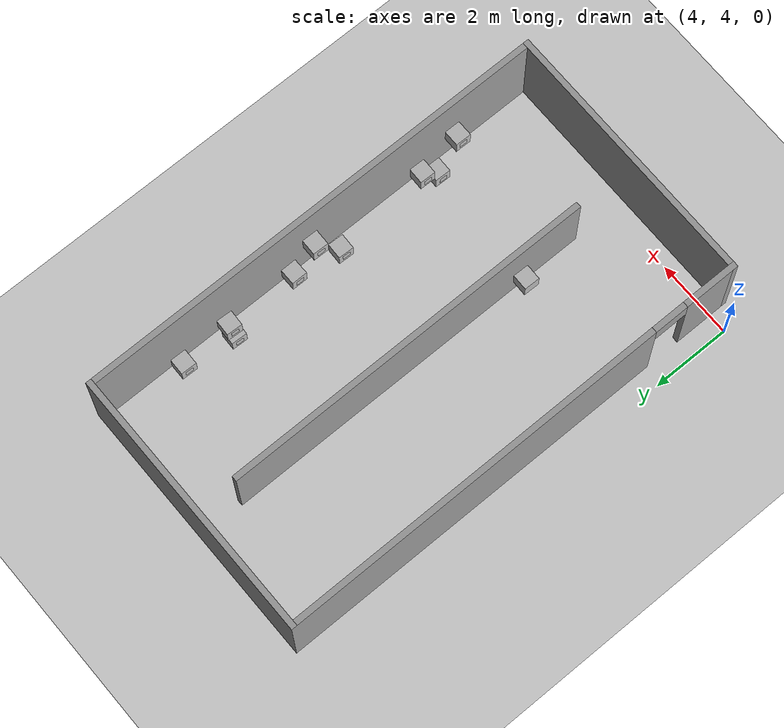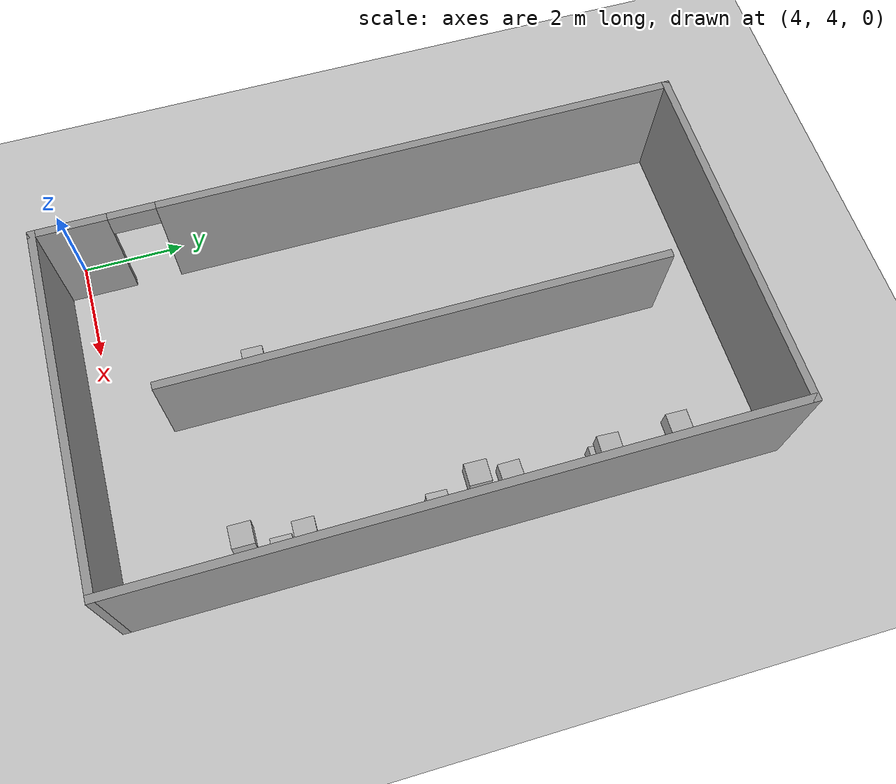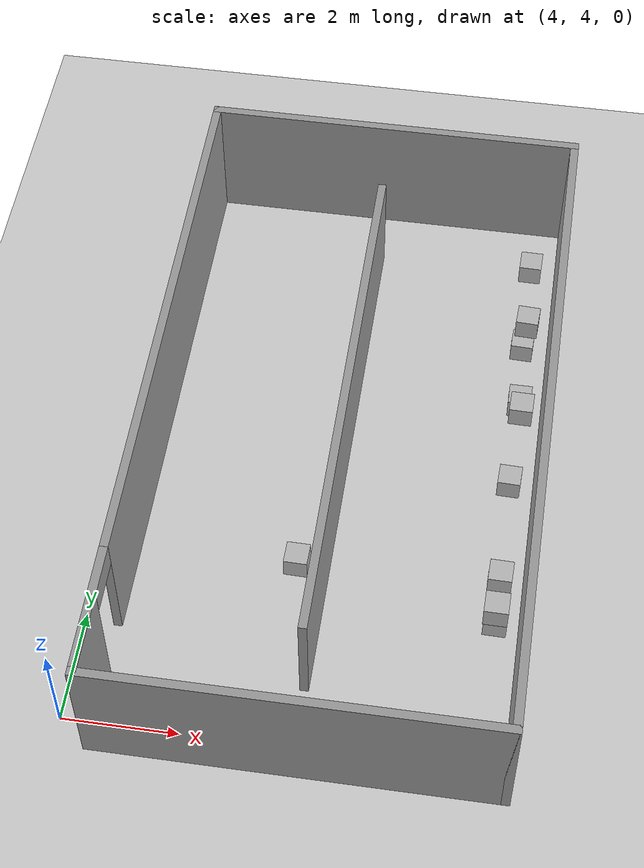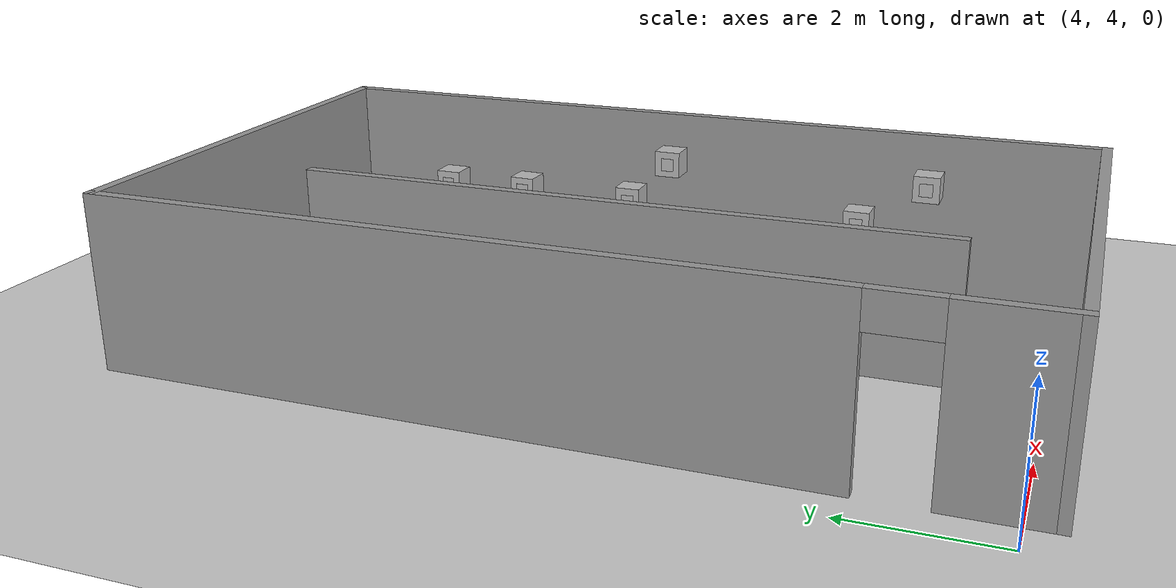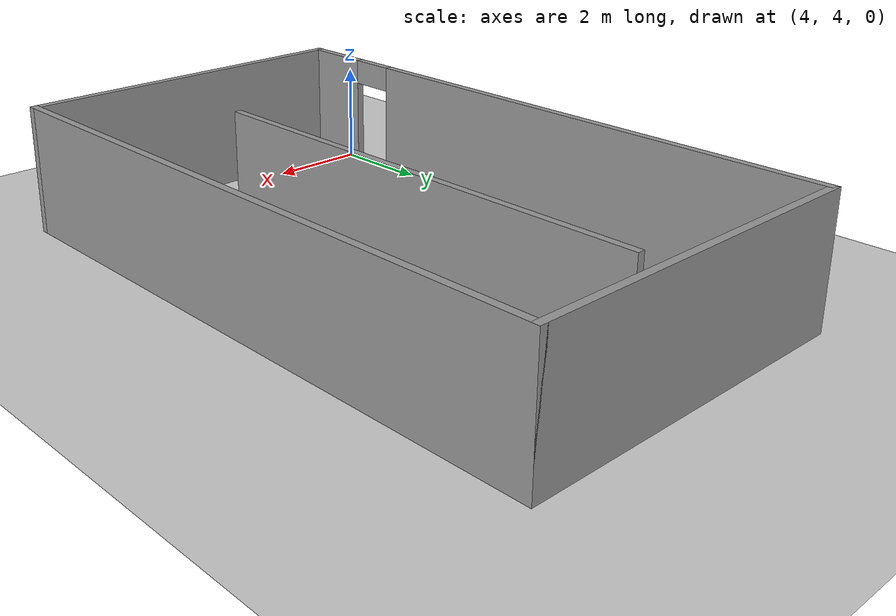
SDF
<sdf version="1.6">
 <world name="default">
  <model name="ground_plane">
   <static>1</static>
   <link name="link">
    <collision name="collision">
     <geometry><plane><normal>0 0 1</normal><size>300 300</size></plane></geometry>
     <surface>
      <contact><collide_bitmask>65535</collide_bitmask></contact>
      <friction><ode><mu>100</mu><mu2>50</mu2></ode></friction>
     </surface>
    </collision>
    <visual name="visual">
     <geometry><plane><normal>0 0 1</normal><size>100 100</size></plane></geometry>
     <material>
      <script><uri>file://media/materials/scripts/gazebo.material</uri><name>Gazebo/Grey</name></script>
     </material>
    </visual>
   </link>
  </model>
  <model name="CuboQR3">
   <link name="link">
    <pose>0 0 0.25 0 -0 0</pose>
    <inertial>
     <mass>0.39</mass>
     <inertia><ixx>0.00058</ixx><ixy>0</ixy><ixz>0</ixz><iyy>0.00058</iyy><iyz>0</iyz><izz>0.00019</izz></inertia>
    </inertial>
    <collision name="collision"><geometry><box><size>0.4 0.4 0.4</size></box></geometry></collision>
    <visual name="visual">
     <geometry><box><size>0.4 0.4 0.4</size></box></geometry>
     <material>
      <script>
       <uri>model://Caja/materials/scripts</uri>
       <uri>model://Caja/materials/textures</uri>
       <name>Caja/Diffuse</name>
      </script>
     </material>
    </visual>
   </link>
   <pose>7.51673 6.91125 0.911665 9e-06 1e-06 -0.020361</pose>
  </model>
  <model name="CuboQR12">
   <link name="link">
    <pose>0 0 0.25 0 -0 0</pose>
    <inertial>
     <mass>0.39</mass>
     <inertia><ixx>0.00058</ixx><ixy>0</ixy><ixz>0</ixz><iyy>0.00058</iyy><iyz>0</iyz><izz>0.00019</izz></inertia>
    </inertial>
    <collision name="collision"><geometry><box><size>0.4 0.4 0.4</size></box></geometry></collision>
    <visual name="visual">
     <geometry><box><size>0.4 0.4 0.4</size></box></geometry>
     <material>
      <script>
       <uri>model://Caja/materials/scripts</uri>
       <uri>model://Caja/materials/textures</uri>
       <name>Caja/Diffuse</name>
      </script>
     </material>
    </visual>
   </link>
   <pose>10.9061 9.46736 0.270556 1e-05 -0 -0.034883</pose>
  </model>
  <model name="CuboQR14">
   <link name="link">
    <pose>0 0 0.25 0 -0 0</pose>
    <inertial>
     <mass>0.39</mass>
     <inertia><ixx>0.00058</ixx><ixy>0</ixy><ixz>0</ixz><iyy>0.00058</iyy><iyz>0</iyz><izz>0.00019</izz></inertia>
    </inertial>
    <collision name="collision"><geometry><box><size>0.4 0.4 0.4</size></box></geometry></collision>
    <visual name="visual">
     <geometry><box><size>0.4 0.4 0.4</size></box></geometry>
     <material>
      <script>
       <uri>model://Caja/materials/scripts</uri>
       <uri>model://Caja/materials/textures</uri>
       <name>Caja/Diffuse</name>
      </script>
     </material>
    </visual>
   </link>
   <pose>10.9097 12.6225 0.911644 3e-05 3e-06 -0.04984</pose>
  </model>
  <model name="CuboQR15">
   <link name="link">
    <pose>0 0 0.25 0 -0 0</pose>
    <inertial>
     <mass>0.39</mass>
     <inertia><ixx>0.00058</ixx><ixy>0</ixy><ixz>0</ixz><iyy>0.00058</iyy><iyz>0</iyz><izz>0.00019</izz></inertia>
    </inertial>
    <collision name="collision"><geometry><box><size>0.4 0.4 0.4</size></box></geometry></collision>
    <visual name="visual">
     <geometry><box><size>0.4 0.4 0.4</size></box></geometry>
     <material>
      <script>
       <uri>model://Caja/materials/scripts</uri>
       <uri>model://Caja/materials/textures</uri>
       <name>Caja/Diffuse</name>
      </script>
     </material>
    </visual>
   </link>
   <pose>10.8658 12.5779 0.270534 -1.3e-05 -1.1e-05 -0.034319</pose>
  </model>
  <model name="CuboQR17">
   <link name="link">
    <pose>0 0 0.25 0 -0 0</pose>
    <inertial>
     <mass>0.39</mass>
     <inertia><ixx>0.00058</ixx><ixy>0</ixy><ixz>0</ixz><iyy>0.00058</iyy><iyz>0</iyz><izz>0.00019</izz></inertia>
    </inertial>
    <collision name="collision"><geometry><box><size>0.4 0.4 0.4</size></box></geometry></collision>
    <visual name="visual">
     <geometry><box><size>0.4 0.4 0.4</size></box></geometry>
     <material>
      <script>
       <uri>model://Caja/materials/scripts</uri>
       <uri>model://Caja/materials/textures</uri>
       <name>Caja/Diffuse</name>
      </script>
     </material>
    </visual>
   </link>
   <pose>11.1027 13.9529 1.16163 1.5708 -1.9e-05 -1.58818</pose>
  </model>
  <model name="CuboQR19">
   <link name="link">
    <pose>0 0 0.25 0 -0 0</pose>
    <inertial>
     <mass>0.39</mass>
     <inertia><ixx>0.00058</ixx><ixy>0</ixy><ixz>0</ixz><iyy>0.00058</iyy><iyz>0</iyz><izz>0.00019</izz></inertia>
    </inertial>
    <collision name="collision"><geometry><box><size>0.4 0.4 0.4</size></box></geometry></collision>
    <visual name="visual">
     <geometry><box><size>0.4 0.4 0.4</size></box></geometry>
     <material>
      <script>
       <uri>model://Caja/materials/scripts</uri>
       <uri>model://Caja/materials/textures</uri>
       <name>Caja/Diffuse</name>
      </script>
     </material>
    </visual>
   </link>
   <pose>10.6629 6.04477 1.81559 0.175448 1.57079 0.166273</pose>
  </model>
  <model name="CuboQR20">
   <link name="link">
    <pose>0 0 0.25 0 -0 0</pose>
    <inertial>
     <mass>0.39</mass>
     <inertia><ixx>0.00058</ixx><ixy>0</ixy><ixz>0</ixz><iyy>0.00058</iyy><iyz>0</iyz><izz>0.00019</izz></inertia>
    </inertial>
    <collision name="collision"><geometry><box><size>0.4 0.4 0.4</size></box></geometry></collision>
    <visual name="visual">
     <geometry><box><size>0.4 0.4 0.4</size></box></geometry>
     <material>
      <script>
       <uri>model://Caja/materials/scripts</uri>
       <uri>model://Caja/materials/textures</uri>
       <name>Caja/Diffuse</name>
      </script>
     </material>
    </visual>
   </link>
   <pose>10.6818 6.60992 0.520558 2.85693 1.57078 2.8353</pose>
  </model>
  <model name="CuboQR26">
   <link name="link">
    <pose>0 0 0.25 0 -0 0</pose>
    <inertial>
     <mass>0.39</mass>
     <inertia><ixx>0.00058</ixx><ixy>0</ixy><ixz>0</ixz><iyy>0.00058</iyy><iyz>0</iyz><izz>0.00019</izz></inertia>
    </inertial>
    <collision name="collision"><geometry><box><size>0.4 0.4 0.4</size></box></geometry></collision>
    <visual name="visual">
     <geometry><box><size>0.4 0.4 0.4</size></box></geometry>
     <material>
      <script>
       <uri>model://Caja/materials/scripts</uri>
       <uri>model://Caja/materials/textures</uri>
       <name>Caja/Diffuse</name>
      </script>
     </material>
    </visual>
   </link>
   <pose>11.176 7.05468 1.16166 2.84113 -1.57079 -2.86249</pose>
  </model>
  <model name="CuboQR27">
   <link name="link">
    <pose>0 0 0.25 0 -0 0</pose>
    <inertial>
     <mass>0.39</mass>
     <inertia><ixx>0.00058</ixx><ixy>0</ixy><ixz>0</ixz><iyy>0.00058</iyy><iyz>0</iyz><izz>0.00019</izz></inertia>
    </inertial>
    <collision name="collision"><geometry><box><size>0.4 0.4 0.4</size></box></geometry></collision>
    <visual name="visual">
     <geometry><box><size>0.4 0.4 0.4</size></box></geometry>
     <material>
      <script>
       <uri>model://Caja/materials/scripts</uri>
       <uri>model://Caja/materials/textures</uri>
       <name>Caja/Diffuse</name>
      </script>
     </material>
    </visual>
   </link>
   <pose>10.9207 10.7797 0.911666 1.2e-05 4e-06 0.004022</pose>
  </model>
  <model name="CuboQR29">
   <link name="link">
    <pose>0 0 0.25 0 -0 0</pose>
    <inertial>
     <mass>0.39</mass>
     <inertia><ixx>0.00058</ixx><ixy>0</ixy><ixz>0</ixz><iyy>0.00058</iyy><iyz>0</iyz><izz>0.00019</izz></inertia>
    </inertial>
    <collision name="collision"><geometry><box><size>0.4 0.4 0.4</size></box></geometry></collision>
    <visual name="visual">
     <geometry><box><size>0.4 0.4 0.4</size></box></geometry>
     <material>
      <script>
       <uri>model://Caja/materials/scripts</uri>
       <uri>model://Caja/materials/textures</uri>
       <name>Caja/Diffuse</name>
      </script>
     </material>
    </visual>
   </link>
   <pose>10.9574 10.1113 1.5656 -1.5e-05 -2.5e-05 -0.018919</pose>
  </model>
  <model name="Estanterias2">
   <link name="Wall_7">
    <pose>-9.54199 -5.19373 -0.244468 0 -0 1.5708</pose>
    <inertial>
     <inertia><ixx>0</ixx><ixy>0</ixy><ixz>0</ixz><iyy>0</iyy><iyz>0</iyz><izz>0</izz></inertia>
     <mass>0</mass>
    </inertial>
    <visual name="Wall_7_Visual">
     <pose>0 0 1.25 0 -0 0</pose>
     <geometry><box><size>9.74609 0.15 2.08966</size></box></geometry>
     <material>
      <script><uri>file://media/materials/scripts/gazebo.material</uri><name>Gazebo/Grey</name></script>
      <ambient>1 1 1 1</ambient>
      <shader type="pixel"/>
      <diffuse>0.7 0.7 0.7 1</diffuse>
      <specular>0.01 0.01 0.01 1</specular>
      <emissive>0 0 0 1</emissive>
     </material>
     <meta><layer>0</layer></meta>
    </visual>
    <collision name="Wall_7_Collision">
     <pose>0 0 1.25 0 -0 0</pose>
     <geometry><box><size>9.74609 0.15 2.08966</size></box></geometry>
     <surface>
      <friction>
       <ode><mu>1</mu><mu2>1</mu2><fdir1>0 0 0</fdir1><slip1>0</slip1><slip2>0</slip2></ode>
       <torsional>
        <coefficient>1</coefficient>
        <patch_radius>0</patch_radius>
        <surface_radius>0</surface_radius>
        <use_patch_radius>1</use_patch_radius>
        <ode><slip>0</slip></ode>
       </torsional>
      </friction>
      <bounce><restitution_coefficient>0</restitution_coefficient><threshold>1e+06</threshold></bounce>
      <contact>
       <collide_without_contact>0</collide_without_contact>
       <collide_without_contact_bitmask>1</collide_without_contact_bitmask>
       <collide_bitmask>1</collide_bitmask>
       <ode>
        <soft_cfm>0</soft_cfm>
        <soft_erp>0.2</soft_erp>
        <kp>1e+13</kp>
        <kd>1</kd>
        <max_vel>0.01</max_vel>
        <min_depth>0</min_depth>
       </ode>
       <bullet>
        <split_impulse>1</split_impulse>
        <split_impulse_penetration_threshold>-0.01</split_impulse_penetration_threshold>
        <soft_cfm>0</soft_cfm>
        <soft_erp>0.2</soft_erp>
        <kp>1e+13</kp>
        <kd>1</kd>
       </bullet>
      </contact>
     </surface>
    </collision>
   </link>
   <static>1</static>
   <pose>17.4434 15.1661 0 0 -0 0</pose>
  </model>
  <model name="qrware">
   <pose>7.98806 9.76227 0 0 -0 0</pose>
   <link name="Wall_2">
    <pose>-3.425 0 0 0 -0 1.5708</pose>
    <visual name="Wall_2_Visual_0">
     <pose>-5.51907 0 1.25 0 -0 0</pose>
     <geometry><box><size>1.46186 0.15 2.5</size></box></geometry>
     <material>
      <script><uri>file://media/materials/scripts/gazebo.material</uri><name>Gazebo/Grey</name></script>
      <ambient>1 1 1 1</ambient>
     </material>
     <meta><layer>0</layer></meta>
    </visual>
    <collision name="Wall_2_Collision_0">
     <geometry><box><size>1.46186 0.15 2.5</size></box></geometry>
     <pose>-5.51907 0 1.25 0 -0 0</pose>
    </collision>
    <visual name="Wall_2_Visual_1">
     <pose>1.18093 0 1.25 0 -0 0</pose>
     <geometry><box><size>10.1381 0.15 2.5</size></box></geometry>
     <material>
      <script><uri>file://media/materials/scripts/gazebo.material</uri><name>Gazebo/Grey</name></script>
      <ambient>1 1 1 1</ambient>
     </material>
     <meta><layer>0</layer></meta>
    </visual>
    <collision name="Wall_2_Collision_1">
     <geometry><box><size>10.1381 0.15 2.5</size></box></geometry>
     <pose>1.18093 0 1.25 0 -0 0</pose>
    </collision>
    <visual name="Wall_2_Visual_2">
     <pose>-4.33814 0 2.25 0 -0 0</pose>
     <geometry><box><size>0.9 0.15 0.5</size></box></geometry>
     <material>
      <script><uri>file://media/materials/scripts/gazebo.material</uri><name>Gazebo/Grey</name></script>
      <ambient>1 1 1 1</ambient>
     </material>
     <meta><layer>0</layer></meta>
    </visual>
    <collision name="Wall_2_Collision_2">
     <geometry><box><size>0.9 0.15 0.5</size></box></geometry>
     <pose>-4.33814 0 2.25 0 -0 0</pose>
    </collision>
   </link>
   <link name="Wall_3">
    <collision name="Wall_3_Collision">
     <geometry><box><size>7 0.15 2.5</size></box></geometry>
     <pose>0 0 1.25 0 -0 0</pose>
    </collision>
    <visual name="Wall_3_Visual">
     <pose>0 0 1.25 0 -0 0</pose>
     <geometry><box><size>7 0.15 2.5</size></box></geometry>
     <material>
      <script><uri>file://media/materials/scripts/gazebo.material</uri><name>Gazebo/Grey</name></script>
      <ambient>1 1 1 1</ambient>
     </material>
     <meta><layer>0</layer></meta>
    </visual>
    <pose>0 6.175 0 0 -0 0</pose>
   </link>
   <link name="Wall_4">
    <collision name="Wall_4_Collision">
     <geometry><box><size>12.5 0.15 2.5</size></box></geometry>
     <pose>0 0 1.25 0 -0 0</pose>
    </collision>
    <visual name="Wall_4_Visual">
     <pose>0 0 1.25 0 -0 0</pose>
     <geometry><box><size>12.5 0.15 2.5</size></box></geometry>
     <material>
      <script><uri>file://media/materials/scripts/gazebo.material</uri><name>Gazebo/Grey</name></script>
      <ambient>1 1 1 1</ambient>
     </material>
     <meta><layer>0</layer></meta>
    </visual>
    <pose>3.425 0 0 0 0 -1.5708</pose>
   </link>
   <link name="Wall_6">
    <collision name="Wall_6_Collision">
     <geometry><box><size>7 0.15 2.5</size></box></geometry>
     <pose>0 0 1.25 0 -0 0</pose>
    </collision>
    <visual name="Wall_6_Visual">
     <pose>0 0 1.25 0 -0 0</pose>
     <geometry><box><size>7 0.15 2.5</size></box></geometry>
     <material>
      <script><uri>file://media/materials/scripts/gazebo.material</uri><name>Gazebo/Grey</name></script>
      <ambient>1 1 1 1</ambient>
     </material>
     <meta><layer>0</layer></meta>
    </visual>
    <pose>0 -6.175 0 0 -0 0</pose>
   </link>
   <static>1</static>
  </model>
  <model name="Plano26">
   <link name="link">
    <gravity>0</gravity>
    <pose>0 0 0.25 0 -0 0</pose>
    <inertial>
     <mass>1e-06</mass>
     <inertia><ixx>0.00058</ixx><ixy>0</ixy><ixz>0</ixz><iyy>0.00058</iyy><iyz>0</iyz><izz>0.00019</izz></inertia>
    </inertial>
    <collision name="collision"><geometry><box><size>0.2 1e-06 0.2</size></box></geometry></collision>
    <visual name="visual">
     <geometry><box><size>0.2 1e-06 0.2</size></box></geometry>
     <material>
      <script>
       <uri>model://Plano26/materials/scripts</uri>
       <uri>model://Plano26/materials/textures</uri>
       <name>Plano26/Diffuse</name>
      </script>
     </material>
     <cast_shadows>0</cast_shadows>
    </visual>
   </link>
   <pose>10.7123 6.04698 1.56042 0 0 -1.57945</pose>
  </model>
  <model name="Plano20">
   <link name="link">
    <gravity>0</gravity>
    <pose>0 0 0.25 0 -0 0</pose>
    <inertial>
     <mass>1e-06</mass>
     <inertia><ixx>0.00058</ixx><ixy>0</ixy><ixz>0</ixz><iyy>0.00058</iyy><iyz>0</iyz><izz>0.00019</izz></inertia>
    </inertial>
    <collision name="collision"><geometry><box><size>0.2 1e-06 0.2</size></box></geometry></collision>
    <visual name="visual">
     <geometry><box><size>0.2 1e-06 0.2</size></box></geometry>
     <material>
      <script>
       <uri>model://Plano20/materials/scripts</uri>
       <uri>model://Plano20/materials/textures</uri>
       <name>Plano20/Diffuse</name>
      </script>
     </material>
     <cast_shadows>0</cast_shadows>
    </visual>
   </link>
   <pose>10.7236 6.60015 0.262989 0 0 -1.59313</pose>
  </model>
  <model name="Plano26_0">
   <link name="link">
    <gravity>0</gravity>
    <pose>0 0 0.25 0 -0 0</pose>
    <inertial>
     <mass>1e-06</mass>
     <inertia><ixx>0.00058</ixx><ixy>0</ixy><ixz>0</ixz><iyy>0.00058</iyy><iyz>0</iyz><izz>0.00019</izz></inertia>
    </inertial>
    <collision name="collision"><geometry><box><size>0.2 1e-06 0.2</size></box></geometry></collision>
    <visual name="visual">
     <geometry><box><size>0.2 1e-06 0.2</size></box></geometry>
     <material>
      <script>
       <uri>model://Plano26/materials/scripts</uri>
       <uri>model://Plano26/materials/textures</uri>
       <name>Plano26/Diffuse</name>
      </script>
     </material>
     <cast_shadows>0</cast_shadows>
    </visual>
   </link>
   <pose>10.7205 7.06672 0.906469 0 0 -1.58759</pose>
  </model>
  <model name="Plano12">
   <link name="link">
    <gravity>0</gravity>
    <pose>0 0 0.25 0 -0 0</pose>
    <inertial>
     <mass>1e-06</mass>
     <inertia><ixx>0.00058</ixx><ixy>0</ixy><ixz>0</ixz><iyy>0.00058</iyy><iyz>0</iyz><izz>0.00019</izz></inertia>
    </inertial>
    <collision name="collision"><geometry><box><size>0.2 1e-06 0.2</size></box></geometry></collision>
    <visual name="visual">
     <geometry><box><size>0.2 1e-06 0.2</size></box></geometry>
     <material>
      <script>
       <uri>model://Plano12/materials/scripts</uri>
       <uri>model://Plano12/materials/textures</uri>
       <name>Plano12/Diffuse</name>
      </script>
     </material>
     <cast_shadows>0</cast_shadows>
    </visual>
   </link>
   <pose>10.7037 9.472 0.272564 0 0 -1.59709</pose>
  </model>
  <model name="Plano29">
   <link name="link">
    <gravity>0</gravity>
    <pose>0 0 0.25 0 -0 0</pose>
    <inertial>
     <mass>1e-06</mass>
     <inertia><ixx>0.00058</ixx><ixy>0</ixy><ixz>0</ixz><iyy>0.00058</iyy><iyz>0</iyz><izz>0.00019</izz></inertia>
    </inertial>
    <collision name="collision"><geometry><box><size>0.2 1e-06 0.2</size></box></geometry></collision>
    <visual name="visual">
     <geometry><box><size>0.2 1e-06 0.2</size></box></geometry>
     <material>
      <script>
       <uri>model://Plano29/materials/scripts</uri>
       <uri>model://Plano29/materials/textures</uri>
       <name>Plano29/Diffuse</name>
      </script>
     </material>
     <cast_shadows>0</cast_shadows>
    </visual>
   </link>
   <pose>10.7522 10.1107 1.5598 0 0 -1.57894</pose>
  </model>
  <model name="Plano27">
   <link name="link">
    <gravity>0</gravity>
    <pose>0 0 0.25 0 -0 0</pose>
    <inertial>
     <mass>1e-06</mass>
     <inertia><ixx>0.00058</ixx><ixy>0</ixy><ixz>0</ixz><iyy>0.00058</iyy><iyz>0</iyz><izz>0.00019</izz></inertia>
    </inertial>
    <collision name="collision"><geometry><box><size>0.2 1e-06 0.2</size></box></geometry></collision>
    <visual name="visual">
     <geometry><box><size>0.2 1e-06 0.2</size></box></geometry>
     <material>
      <script>
       <uri>model://Plano27/materials/scripts</uri>
       <uri>model://Plano27/materials/textures</uri>
       <name>Plano27/Diffuse</name>
      </script>
     </material>
     <cast_shadows>0</cast_shadows>
    </visual>
   </link>
   <pose>10.7156 10.7789 0.900017 0 0 -1.57306</pose>
  </model>
  <model name="Plano15">
   <link name="link">
    <gravity>0</gravity>
    <pose>0 0 0.25 0 -0 0</pose>
    <inertial>
     <mass>1e-06</mass>
     <inertia><ixx>0.00058</ixx><ixy>0</ixy><ixz>0</ixz><iyy>0.00058</iyy><iyz>0</iyz><izz>0.00019</izz></inertia>
    </inertial>
    <collision name="collision"><geometry><box><size>0.2 1e-06 0.2</size></box></geometry></collision>
    <visual name="visual">
     <geometry><box><size>0.2 1e-06 0.2</size></box></geometry>
     <material>
      <script>
       <uri>model://Plano15/materials/scripts</uri>
       <uri>model://Plano15/materials/textures</uri>
       <name>Plano15/Diffuse</name>
      </script>
     </material>
     <cast_shadows>0</cast_shadows>
    </visual>
   </link>
   <pose>10.6606 12.5838 0.25794 0 0 -1.60068</pose>
  </model>
  <model name="Plano14">
   <link name="link">
    <gravity>0</gravity>
    <pose>0 0 0.25 0 -0 0</pose>
    <inertial>
     <mass>1e-06</mass>
     <inertia><ixx>0.00058</ixx><ixy>0</ixy><ixz>0</ixz><iyy>0.00058</iyy><iyz>0</iyz><izz>0.00019</izz></inertia>
    </inertial>
    <collision name="collision"><geometry><box><size>0.2 1e-06 0.2</size></box></geometry></collision>
    <visual name="visual">
     <geometry><box><size>0.2 1e-06 0.2</size></box></geometry>
     <material>
      <script>
       <uri>model://Plano14/materials/scripts</uri>
       <uri>model://Plano14/materials/textures</uri>
       <name>Plano14/Diffuse</name>
      </script>
     </material>
     <cast_shadows>0</cast_shadows>
    </visual>
   </link>
   <pose>10.7078 12.6284 0.906754 0 0 -1.62849</pose>
  </model>
  <model name="Plano17">
   <link name="link">
    <gravity>0</gravity>
    <pose>0 0 0.25 0 -0 0</pose>
    <inertial>
     <mass>1e-06</mass>
     <inertia><ixx>0.00058</ixx><ixy>0</ixy><ixz>0</ixz><iyy>0.00058</iyy><iyz>0</iyz><izz>0.00019</izz></inertia>
    </inertial>
    <collision name="collision"><geometry><box><size>0.2 1e-06 0.2</size></box></geometry></collision>
    <visual name="visual">
     <geometry><box><size>0.2 1e-06 0.2</size></box></geometry>
     <material>
      <script>
       <uri>model://Plano17/materials/scripts</uri>
       <uri>model://Plano17/materials/textures</uri>
       <name>Plano17/Diffuse</name>
      </script>
     </material>
     <cast_shadows>0</cast_shadows>
    </visual>
   </link>
   <pose>10.6508 13.9613 0.903508 0 0 -1.5876</pose>
  </model>
 </world>
</sdf>
